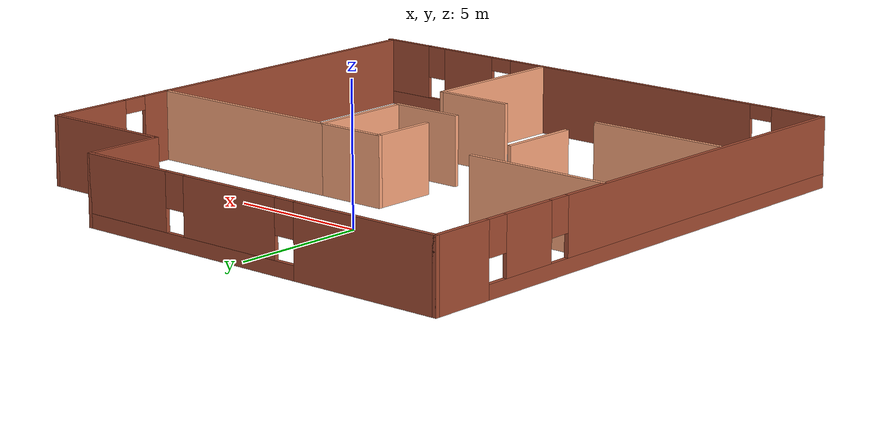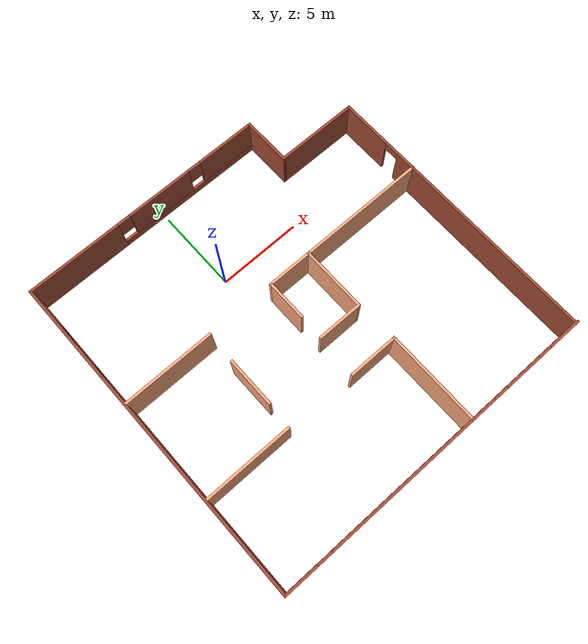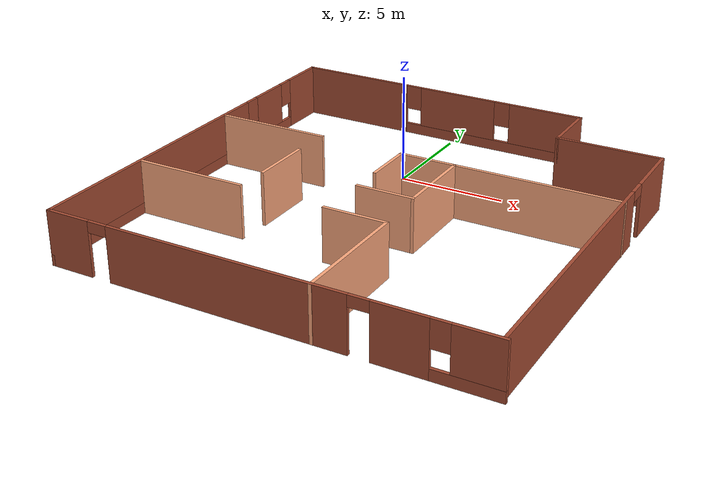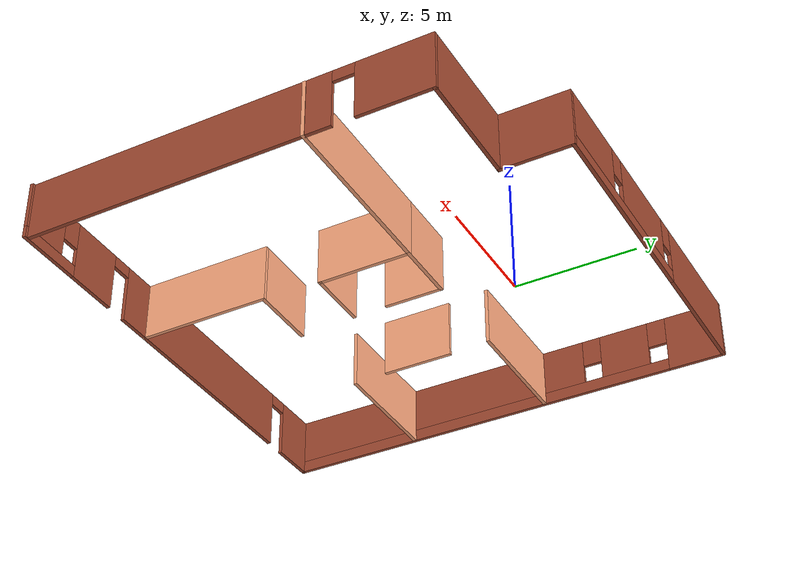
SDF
<?xml version='1.0'?>
<sdf version='1.6'>
  <model name='Workshop_Office'>
    <pose frame=''>1.61432 -4.56111 0 0 -0 0</pose>
    <link name='Wall_2'>
      <pose frame=''>-9.90477 0.002703 0 0 0 -1.5708</pose>
      <visual name='Wall_2_Visual_0'>
        <pose frame=''>-8.81158 0 1.25 0 -0 0</pose>
        <geometry>
          <box>
            <size>2.37684 0.15 2.5</size>
          </box>
        </geometry>
        <material>
          <script>
            <uri>file://media/materials/scripts/gazebo.material</uri>
            <name>Gazebo/Bricks</name>
          </script>
          <ambient>1 1 1 1</ambient>
        </material>
        <meta>
          <layer>0</layer>
        </meta>
      </visual>
      <collision name='Wall_2_Collision_0'>
        <geometry>
          <box>
            <size>2.37684 0.15 2.5</size>
          </box>
        </geometry>
        <pose frame=''>-8.81158 0 1.25 0 -0 0</pose>
      </collision>
      <visual name='Wall_2_Visual_1'>
        <pose frame=''>1.18842 0 0.25 0 -0 0</pose>
        <geometry>
          <box>
            <size>17.6232 0.15 0.5</size>
          </box>
        </geometry>
        <material>
          <script>
            <uri>file://media/materials/scripts/gazebo.material</uri>
            <name>Gazebo/Bricks</name>
          </script>
          <ambient>1 1 1 1</ambient>
        </material>
        <meta>
          <layer>0</layer>
        </meta>
      </visual>
      <collision name='Wall_2_Collision_1'>
        <geometry>
          <box>
            <size>17.6232 0.15 0.5</size>
          </box>
        </geometry>
        <pose frame=''>1.18842 0 0.25 0 -0 0</pose>
      </collision>
      <visual name='Wall_2_Visual_2'>
        <pose frame=''>-5.76229 0 1.5 0 -0 0</pose>
        <geometry>
          <box>
            <size>2.12174 0.15 2</size>
          </box>
        </geometry>
        <material>
          <script>
            <uri>file://media/materials/scripts/gazebo.material</uri>
            <name>Gazebo/Bricks</name>
          </script>
          <ambient>1 1 1 1</ambient>
        </material>
        <meta>
          <layer>0</layer>
        </meta>
      </visual>
      <collision name='Wall_2_Collision_2'>
        <geometry>
          <box>
            <size>2.12174 0.15 2</size>
          </box>
        </geometry>
        <pose frame=''>-5.76229 0 1.5 0 -0 0</pose>
      </collision>
      <visual name='Wall_2_Visual_3'>
        <pose frame=''>3.04929 0 1.5 0 -0 0</pose>
        <geometry>
          <box>
            <size>13.9014 0.15 2</size>
          </box>
        </geometry>
        <material>
          <script>
            <uri>file://media/materials/scripts/gazebo.material</uri>
            <name>Gazebo/Bricks</name>
          </script>
          <ambient>1 1 1 1</ambient>
        </material>
        <meta>
          <layer>0</layer>
        </meta>
      </visual>
      <collision name='Wall_2_Collision_3'>
        <geometry>
          <box>
            <size>13.9014 0.15 2</size>
          </box>
        </geometry>
        <pose frame=''>3.04929 0 1.5 0 -0 0</pose>
      </collision>
      <visual name='Wall_2_Visual_4'>
        <pose frame=''>-7.22316 0 1.9 0 -0 0</pose>
        <geometry>
          <box>
            <size>0.8 0.15 1.2</size>
          </box>
        </geometry>
        <material>
          <script>
            <uri>file://media/materials/scripts/gazebo.material</uri>
            <name>Gazebo/Bricks</name>
          </script>
          <ambient>1 1 1 1</ambient>
        </material>
        <meta>
          <layer>0</layer>
        </meta>
      </visual>
      <collision name='Wall_2_Collision_4'>
        <geometry>
          <box>
            <size>0.8 0.15 1.2</size>
          </box>
        </geometry>
        <pose frame=''>-7.22316 0 1.9 0 -0 0</pose>
      </collision>
      <visual name='Wall_2_Visual_5'>
        <pose frame=''>-4.30143 0 1.9 0 -0 0</pose>
        <geometry>
          <box>
            <size>0.8 0.15 1.2</size>
          </box>
        </geometry>
        <material>
          <script>
            <uri>file://media/materials/scripts/gazebo.material</uri>
            <name>Gazebo/Bricks</name>
          </script>
          <ambient>1 1 1 1</ambient>
        </material>
        <meta>
          <layer>0</layer>
        </meta>
      </visual>
      <collision name='Wall_2_Collision_5'>
        <geometry>
          <box>
            <size>0.8 0.15 1.2</size>
          </box>
        </geometry>
        <pose frame=''>-4.30143 0 1.9 0 -0 0</pose>
      </collision>
    </link>
    <link name='Wall_3'>
      <pose frame=''>0 -9.9223 0 0 -0 0</pose>
      <visual name='Wall_3_Visual_0'>
        <pose frame=''>-8.93023 0 1.25 0 -0 0</pose>
        <geometry>
          <box>
            <size>2.09908 0.15 2.5</size>
          </box>
        </geometry>
        <material>
          <script>
            <uri>file://media/materials/scripts/gazebo.material</uri>
            <name>Gazebo/Bricks</name>
          </script>
          <ambient>1 1 1 1</ambient>
        </material>
        <meta>
          <layer>0</layer>
        </meta>
      </visual>
      <collision name='Wall_3_Collision_0'>
        <geometry>
          <box>
            <size>2.09908 0.15 2.5</size>
          </box>
        </geometry>
        <pose frame=''>-8.93023 0 1.25 0 -0 0</pose>
      </collision>
      <visual name='Wall_3_Visual_1'>
        <pose frame=''>-1.56113 0 1.25 0 -0 0</pose>
        <geometry>
          <box>
            <size>10.8391 0.15 2.5</size>
          </box>
        </geometry>
        <material>
          <script>
            <uri>file://media/materials/scripts/gazebo.material</uri>
            <name>Gazebo/Bricks</name>
          </script>
          <ambient>1 1 1 1</ambient>
        </material>
        <meta>
          <layer>0</layer>
        </meta>
      </visual>
      <collision name='Wall_3_Collision_1'>
        <geometry>
          <box>
            <size>10.8391 0.15 2.5</size>
          </box>
        </geometry>
        <pose frame=''>-1.56113 0 1.25 0 -0 0</pose>
      </collision>
      <visual name='Wall_3_Visual_2'>
        <pose frame=''>5.92474 0 1.25 0 -0 0</pose>
        <geometry>
          <box>
            <size>2.33261 0.15 2.5</size>
          </box>
        </geometry>
        <material>
          <script>
            <uri>file://media/materials/scripts/gazebo.material</uri>
            <name>Gazebo/Bricks</name>
          </script>
          <ambient>1 1 1 1</ambient>
        </material>
        <meta>
          <layer>0</layer>
        </meta>
      </visual>
      <collision name='Wall_3_Collision_2'>
        <geometry>
          <box>
            <size>2.33261 0.15 2.5</size>
          </box>
        </geometry>
        <pose frame=''>5.92474 0 1.25 0 -0 0</pose>
      </collision>
      <visual name='Wall_3_Visual_3'>
        <pose frame=''>8.53541 0 0.25 0 -0 0</pose>
        <geometry>
          <box>
            <size>2.88873 0.15 0.5</size>
          </box>
        </geometry>
        <material>
          <script>
            <uri>file://media/materials/scripts/gazebo.material</uri>
            <name>Gazebo/Bricks</name>
          </script>
          <ambient>1 1 1 1</ambient>
        </material>
        <meta>
          <layer>0</layer>
        </meta>
      </visual>
      <collision name='Wall_3_Collision_3'>
        <geometry>
          <box>
            <size>2.88873 0.15 0.5</size>
          </box>
        </geometry>
        <pose frame=''>8.53541 0 0.25 0 -0 0</pose>
      </collision>
      <visual name='Wall_3_Visual_4'>
        <pose frame=''>8.93541 0 1.5 0 -0 0</pose>
        <geometry>
          <box>
            <size>2.08873 0.15 2</size>
          </box>
        </geometry>
        <material>
          <script>
            <uri>file://media/materials/scripts/gazebo.material</uri>
            <name>Gazebo/Bricks</name>
          </script>
          <ambient>1 1 1 1</ambient>
        </material>
        <meta>
          <layer>0</layer>
        </meta>
      </visual>
      <collision name='Wall_3_Collision_4'>
        <geometry>
          <box>
            <size>2.08873 0.15 2</size>
          </box>
        </geometry>
        <pose frame=''>8.93541 0 1.5 0 -0 0</pose>
      </collision>
      <visual name='Wall_3_Visual_5'>
        <pose frame=''>7.49104 0 1.9 0 -0 0</pose>
        <geometry>
          <box>
            <size>0.8 0.15 1.2</size>
          </box>
        </geometry>
        <material>
          <script>
            <uri>file://media/materials/scripts/gazebo.material</uri>
            <name>Gazebo/Bricks</name>
          </script>
          <ambient>1 1 1 1</ambient>
        </material>
        <meta>
          <layer>0</layer>
        </meta>
      </visual>
      <collision name='Wall_3_Collision_5'>
        <geometry>
          <box>
            <size>0.8 0.15 1.2</size>
          </box>
        </geometry>
        <pose frame=''>7.49104 0 1.9 0 -0 0</pose>
      </collision>
      <visual name='Wall_3_Visual_6'>
        <pose frame=''>-7.4307 0 2.25 0 -0 0</pose>
        <geometry>
          <box>
            <size>0.9 0.15 0.5</size>
          </box>
        </geometry>
        <material>
          <script>
            <uri>file://media/materials/scripts/gazebo.material</uri>
            <name>Gazebo/Bricks</name>
          </script>
          <ambient>1 1 1 1</ambient>
        </material>
        <meta>
          <layer>0</layer>
        </meta>
      </visual>
      <collision name='Wall_3_Collision_6'>
        <geometry>
          <box>
            <size>0.9 0.15 0.5</size>
          </box>
        </geometry>
        <pose frame=''>-7.4307 0 2.25 0 -0 0</pose>
      </collision>
      <visual name='Wall_3_Visual_7'>
        <pose frame=''>4.30844 0 2.25 0 -0 0</pose>
        <geometry>
          <box>
            <size>0.9 0.15 0.5</size>
          </box>
        </geometry>
        <material>
          <script>
            <uri>file://media/materials/scripts/gazebo.material</uri>
            <name>Gazebo/Bricks</name>
          </script>
          <ambient>1 1 1 1</ambient>
        </material>
        <meta>
          <layer>0</layer>
        </meta>
      </visual>
      <collision name='Wall_3_Collision_7'>
        <geometry>
          <box>
            <size>0.9 0.15 0.5</size>
          </box>
        </geometry>
        <pose frame=''>4.30844 0 2.25 0 -0 0</pose>
      </collision>
    </link>
    <link name='Wall_35'>
      <collision name='Wall_35_Collision'>
        <geometry>
          <box>
            <size>5.25 0.15 2.5</size>
          </box>
        </geometry>
        <pose frame=''>0 0 1.25 0 -0 0</pose>
      </collision>
      <visual name='Wall_35_Visual'>
        <pose frame=''>0 0 1.25 0 -0 0</pose>
        <geometry>
          <box>
            <size>5.25 0.15 2.5</size>
          </box>
        </geometry>
        <material>
          <script>
            <uri>file://media/materials/scripts/gazebo.material</uri>
            <name>Gazebo/Grey</name>
          </script>
          <ambient>1 0.666667 0.498039 1</ambient>
        </material>
        <meta>
          <layer>0</layer>
        </meta>
      </visual>
      <pose frame=''>-7.22637 -4.21655 0 0 -0 0</pose>
    </link>
    <link name='Wall_38'>
      <collision name='Wall_38_Collision'>
        <geometry>
          <box>
            <size>5.75 0.15 2.5</size>
          </box>
        </geometry>
        <pose frame=''>0 0 1.25 0 -0 0</pose>
      </collision>
      <visual name='Wall_38_Visual'>
        <pose frame=''>0 0 1.25 0 -0 0</pose>
        <geometry>
          <box>
            <size>5.75 0.15 2.5</size>
          </box>
        </geometry>
        <material>
          <script>
            <uri>file://media/materials/scripts/gazebo.material</uri>
            <name>Gazebo/Grey</name>
          </script>
          <ambient>1 0.666667 0.498039 1</ambient>
        </material>
        <meta>
          <layer>0</layer>
        </meta>
      </visual>
      <pose frame=''>2.34244 -7.1277 0 0 0 -1.5708</pose>
    </link>
    <link name='Wall_40'>
      <collision name='Wall_40_Collision'>
        <geometry>
          <box>
            <size>2.75 0.15 2.5</size>
          </box>
        </geometry>
        <pose frame=''>0 0 1.25 0 -0 0</pose>
      </collision>
      <visual name='Wall_40_Visual'>
        <pose frame=''>0 0 1.25 0 -0 0</pose>
        <geometry>
          <box>
            <size>2.75 0.15 2.5</size>
          </box>
        </geometry>
        <material>
          <script>
            <uri>file://media/materials/scripts/gazebo.material</uri>
            <name>Gazebo/Grey</name>
          </script>
          <ambient>1 0.666667 0.498039 1</ambient>
        </material>
        <meta>
          <layer>0</layer>
        </meta>
      </visual>
      <pose frame=''>0.914936 -1.85738 0 0 -0 0</pose>
    </link>
    <link name='Wall_41'>
      <collision name='Wall_41_Collision'>
        <geometry>
          <box>
            <size>4 0.15 2.5</size>
          </box>
        </geometry>
        <pose frame=''>0 0 1.25 0 -0 0</pose>
      </collision>
      <visual name='Wall_41_Visual'>
        <pose frame=''>0 0 1.25 0 -0 0</pose>
        <geometry>
          <box>
            <size>4 0.15 2.5</size>
          </box>
        </geometry>
        <material>
          <script>
            <uri>file://media/materials/scripts/gazebo.material</uri>
            <name>Gazebo/Grey</name>
          </script>
          <ambient>1 0.666667 0.498039 1</ambient>
        </material>
        <meta>
          <layer>0</layer>
        </meta>
      </visual>
      <pose frame=''>2.21494 0.067617 0 0 -0 1.5708</pose>
    </link>
    <link name='Wall_48'>
      <collision name='Wall_48_Collision'>
        <geometry>
          <box>
            <size>7.75 0.15 2.5</size>
          </box>
        </geometry>
        <pose frame=''>0 0 1.25 0 -0 0</pose>
      </collision>
      <visual name='Wall_48_Visual'>
        <pose frame=''>0 0 1.25 0 -0 0</pose>
        <geometry>
          <box>
            <size>7.75 0.15 2.5</size>
          </box>
        </geometry>
        <material>
          <script>
            <uri>file://media/materials/scripts/gazebo.material</uri>
            <name>Gazebo/Grey</name>
          </script>
          <ambient>1 0.666667 0.498039 1</ambient>
        </material>
        <meta>
          <layer>0</layer>
        </meta>
      </visual>
      <pose frame=''>6.01494 1.99262 0 0 -0 0</pose>
    </link>
    <link name='Wall_5'>
      <pose frame=''>-2.47977 9.9277 0 0 -0 0</pose>
      <visual name='Wall_5_Visual_0'>
        <pose frame=''>-4.62546 0 1.25 0 -0 0</pose>
        <geometry>
          <box>
            <size>5.74908 0.15 2.5</size>
          </box>
        </geometry>
        <material>
          <script>
            <uri>file://media/materials/scripts/gazebo.material</uri>
            <name>Gazebo/Bricks</name>
          </script>
          <ambient>1 1 1 1</ambient>
        </material>
        <meta>
          <layer>0</layer>
        </meta>
      </visual>
      <collision name='Wall_5_Collision_0'>
        <geometry>
          <box>
            <size>5.74908 0.15 2.5</size>
          </box>
        </geometry>
        <pose frame=''>-4.62546 0 1.25 0 -0 0</pose>
      </collision>
      <visual name='Wall_5_Visual_1'>
        <pose frame=''>2.87454 0 0.25 0 -0 0</pose>
        <geometry>
          <box>
            <size>9.25092 0.15 0.5</size>
          </box>
        </geometry>
        <material>
          <script>
            <uri>file://media/materials/scripts/gazebo.material</uri>
            <name>Gazebo/Bricks</name>
          </script>
          <ambient>1 1 1 1</ambient>
        </material>
        <meta>
          <layer>0</layer>
        </meta>
      </visual>
      <collision name='Wall_5_Collision_1'>
        <geometry>
          <box>
            <size>9.25092 0.15 0.5</size>
          </box>
        </geometry>
        <pose frame=''>2.87454 0 0.25 0 -0 0</pose>
      </collision>
      <visual name='Wall_5_Visual_2'>
        <pose frame=''>1.04908 0 1.5 0 -0 0</pose>
        <geometry>
          <box>
            <size>4 0.15 2</size>
          </box>
        </geometry>
        <material>
          <script>
            <uri>file://media/materials/scripts/gazebo.material</uri>
            <name>Gazebo/Bricks</name>
          </script>
          <ambient>1 1 1 1</ambient>
        </material>
        <meta>
          <layer>0</layer>
        </meta>
      </visual>
      <collision name='Wall_5_Collision_2'>
        <geometry>
          <box>
            <size>4 0.15 2</size>
          </box>
        </geometry>
        <pose frame=''>1.04908 0 1.5 0 -0 0</pose>
      </collision>
      <visual name='Wall_5_Visual_3'>
        <pose frame=''>5.67454 0 1.5 0 -0 0</pose>
        <geometry>
          <box>
            <size>3.65092 0.15 2</size>
          </box>
        </geometry>
        <material>
          <script>
            <uri>file://media/materials/scripts/gazebo.material</uri>
            <name>Gazebo/Bricks</name>
          </script>
          <ambient>1 1 1 1</ambient>
        </material>
        <meta>
          <layer>0</layer>
        </meta>
      </visual>
      <collision name='Wall_5_Collision_3'>
        <geometry>
          <box>
            <size>3.65092 0.15 2</size>
          </box>
        </geometry>
        <pose frame=''>5.67454 0 1.5 0 -0 0</pose>
      </collision>
      <visual name='Wall_5_Visual_4'>
        <pose frame=''>-1.35092 0 1.9 0 -0 0</pose>
        <geometry>
          <box>
            <size>0.8 0.15 1.2</size>
          </box>
        </geometry>
        <material>
          <script>
            <uri>file://media/materials/scripts/gazebo.material</uri>
            <name>Gazebo/Bricks</name>
          </script>
          <ambient>1 1 1 1</ambient>
        </material>
        <meta>
          <layer>0</layer>
        </meta>
      </visual>
      <collision name='Wall_5_Collision_4'>
        <geometry>
          <box>
            <size>0.8 0.15 1.2</size>
          </box>
        </geometry>
        <pose frame=''>-1.35092 0 1.9 0 -0 0</pose>
      </collision>
      <visual name='Wall_5_Visual_5'>
        <pose frame=''>3.44908 0 1.9 0 -0 0</pose>
        <geometry>
          <box>
            <size>0.8 0.15 1.2</size>
          </box>
        </geometry>
        <material>
          <script>
            <uri>file://media/materials/scripts/gazebo.material</uri>
            <name>Gazebo/Bricks</name>
          </script>
          <ambient>1 1 1 1</ambient>
        </material>
        <meta>
          <layer>0</layer>
        </meta>
      </visual>
      <collision name='Wall_5_Collision_5'>
        <geometry>
          <box>
            <size>0.8 0.15 1.2</size>
          </box>
        </geometry>
        <pose frame=''>3.44908 0 1.9 0 -0 0</pose>
      </collision>
    </link>
    <link name='Wall_50'>
      <collision name='Wall_50_Collision'>
        <geometry>
          <box>
            <size>5.5 0.15 2.5</size>
          </box>
        </geometry>
        <pose frame=''>0 0 1.25 0 -0 0</pose>
      </collision>
      <visual name='Wall_50_Visual'>
        <pose frame=''>0 0 1.25 0 -0 0</pose>
        <geometry>
          <box>
            <size>5.5 0.15 2.5</size>
          </box>
        </geometry>
        <material>
          <script>
            <uri>file://media/materials/scripts/gazebo.material</uri>
            <name>Gazebo/Grey</name>
          </script>
          <ambient>1 0.666667 0.498039 1</ambient>
        </material>
        <meta>
          <layer>0</layer>
        </meta>
      </visual>
      <pose frame=''>-7.15569 2.00847 0 0 -0 0</pose>
    </link>
    <link name='Wall_52'>
      <collision name='Wall_52_Collision'>
        <geometry>
          <box>
            <size>3 0.15 2.5</size>
          </box>
        </geometry>
        <pose frame=''>0 0 1.25 0 -0 0</pose>
      </collision>
      <visual name='Wall_52_Visual'>
        <pose frame=''>0 0 1.25 0 -0 0</pose>
        <geometry>
          <box>
            <size>3 0.15 2.5</size>
          </box>
        </geometry>
        <material>
          <script>
            <uri>file://media/materials/scripts/gazebo.material</uri>
            <name>Gazebo/Grey</name>
          </script>
          <ambient>1 0.666667 0.498039 1</ambient>
        </material>
        <meta>
          <layer>0</layer>
        </meta>
      </visual>
      <pose frame=''>-4.56113 -1.24261 0 0 0 -1.5708</pose>
    </link>
    <link name='Wall_54'>
      <collision name='Wall_54_Collision'>
        <geometry>
          <box>
            <size>2.75 0.15 2.5</size>
          </box>
        </geometry>
        <pose frame=''>0 0 1.25 0 -0 0</pose>
      </collision>
      <visual name='Wall_54_Visual'>
        <pose frame=''>0 0 1.25 0 -0 0</pose>
        <geometry>
          <box>
            <size>2.75 0.15 2.5</size>
          </box>
        </geometry>
        <material>
          <script>
            <uri>file://media/materials/scripts/gazebo.material</uri>
            <name>Gazebo/Grey</name>
          </script>
          <ambient>1 0.666667 0.498039 1</ambient>
        </material>
        <meta>
          <layer>0</layer>
        </meta>
      </visual>
      <pose frame=''>0.914936 1.99262 0 0 -0 3.14159</pose>
    </link>
    <link name='Wall_55'>
      <collision name='Wall_55_Collision'>
        <geometry>
          <box>
            <size>2.5 0.15 2.5</size>
          </box>
        </geometry>
        <pose frame=''>0 0 1.25 0 -0 0</pose>
      </collision>
      <visual name='Wall_55_Visual'>
        <pose frame=''>0 0 1.25 0 -0 0</pose>
        <geometry>
          <box>
            <size>2.5 0.15 2.5</size>
          </box>
        </geometry>
        <material>
          <script>
            <uri>file://media/materials/scripts/gazebo.material</uri>
            <name>Gazebo/Grey</name>
          </script>
          <ambient>1 0.666667 0.498039 1</ambient>
        </material>
        <meta>
          <layer>0</layer>
        </meta>
      </visual>
      <pose frame=''>-0.385064 0.817617 0 0 0 -1.5708</pose>
    </link>
    <link name='Wall_57'>
      <collision name='Wall_57_Collision'>
        <geometry>
          <box>
            <size>3 0.15 2.5</size>
          </box>
        </geometry>
        <pose frame=''>0 0 1.25 0 -0 0</pose>
      </collision>
      <visual name='Wall_57_Visual'>
        <pose frame=''>0 0 1.25 0 -0 0</pose>
        <geometry>
          <box>
            <size>3 0.15 2.5</size>
          </box>
        </geometry>
        <material>
          <script>
            <uri>file://media/materials/scripts/gazebo.material</uri>
            <name>Gazebo/Grey</name>
          </script>
          <ambient>1 0.666667 0.498039 1</ambient>
        </material>
        <meta>
          <layer>0</layer>
        </meta>
      </visual>
      <pose frame=''>0.917441 -4.3277 0 0 -0 3.14159</pose>
    </link>
    <link name='Wall_7'>
      <collision name='Wall_7_Collision'>
        <geometry>
          <box>
            <size>3 0.15 2.5</size>
          </box>
        </geometry>
        <pose frame=''>0 0 1.25 0 -0 0</pose>
      </collision>
      <visual name='Wall_7_Visual'>
        <pose frame=''>0 0 1.25 0 -0 0</pose>
        <geometry>
          <box>
            <size>3 0.15 2.5</size>
          </box>
        </geometry>
        <material>
          <script>
            <uri>file://media/materials/scripts/gazebo.material</uri>
            <name>Gazebo/Bricks</name>
          </script>
          <ambient>1 1 1 1</ambient>
        </material>
        <meta>
          <layer>0</layer>
        </meta>
      </visual>
      <pose frame=''>4.94523 8.5027 0 0 0 -1.5708</pose>
    </link>
    <link name='Wall_8'>
      <collision name='Wall_8_Collision'>
        <geometry>
          <box>
            <size>5 0.15 2.5</size>
          </box>
        </geometry>
        <pose frame=''>0 0 1.25 0 -0 0</pose>
      </collision>
      <visual name='Wall_8_Visual'>
        <pose frame=''>0 0 1.25 0 -0 0</pose>
        <geometry>
          <box>
            <size>5 0.15 2.5</size>
          </box>
        </geometry>
        <material>
          <script>
            <uri>file://media/materials/scripts/gazebo.material</uri>
            <name>Gazebo/Bricks</name>
          </script>
          <ambient>1 1 1 1</ambient>
        </material>
        <meta>
          <layer>0</layer>
        </meta>
      </visual>
      <pose frame=''>7.37023 7.0777 0 0 -0 0</pose>
    </link>
    <link name='Wall_9'>
      <pose frame=''>9.79523 -1.3473 0 0 0 -1.5708</pose>
      <visual name='Wall_9_Visual_0'>
        <pose frame=''>-6.9355 0 1.25 0 -0 0</pose>
        <geometry>
          <box>
            <size>3.12901 0.15 2.5</size>
          </box>
        </geometry>
        <material>
          <script>
            <uri>file://media/materials/scripts/gazebo.material</uri>
            <name>Gazebo/Bricks</name>
          </script>
          <ambient>1 1 1 1</ambient>
        </material>
        <meta>
          <layer>0</layer>
        </meta>
      </visual>
      <collision name='Wall_9_Collision_0'>
        <geometry>
          <box>
            <size>3.12901 0.15 2.5</size>
          </box>
        </geometry>
        <pose frame=''>-6.9355 0 1.25 0 -0 0</pose>
      </collision>
      <visual name='Wall_9_Visual_1'>
        <pose frame=''>2.01451 0 1.25 0 -0 0</pose>
        <geometry>
          <box>
            <size>12.971 0.15 2.5</size>
          </box>
        </geometry>
        <material>
          <script>
            <uri>file://media/materials/scripts/gazebo.material</uri>
            <name>Gazebo/Bricks</name>
          </script>
          <ambient>1 1 1 1</ambient>
        </material>
        <meta>
          <layer>0</layer>
        </meta>
      </visual>
      <collision name='Wall_9_Collision_1'>
        <geometry>
          <box>
            <size>12.971 0.15 2.5</size>
          </box>
        </geometry>
        <pose frame=''>2.01451 0 1.25 0 -0 0</pose>
      </collision>
      <visual name='Wall_9_Visual_2'>
        <pose frame=''>-4.92099 0 2.25 0 -0 0</pose>
        <geometry>
          <box>
            <size>0.9 0.15 0.5</size>
          </box>
        </geometry>
        <material>
          <script>
            <uri>file://media/materials/scripts/gazebo.material</uri>
            <name>Gazebo/Bricks</name>
          </script>
          <ambient>1 1 1 1</ambient>
        </material>
        <meta>
          <layer>0</layer>
        </meta>
      </visual>
      <collision name='Wall_9_Collision_2'>
        <geometry>
          <box>
            <size>0.9 0.15 0.5</size>
          </box>
        </geometry>
        <pose frame=''>-4.92099 0 2.25 0 -0 0</pose>
      </collision>
    </link>
    <static>1</static>
  </model>
</sdf>
